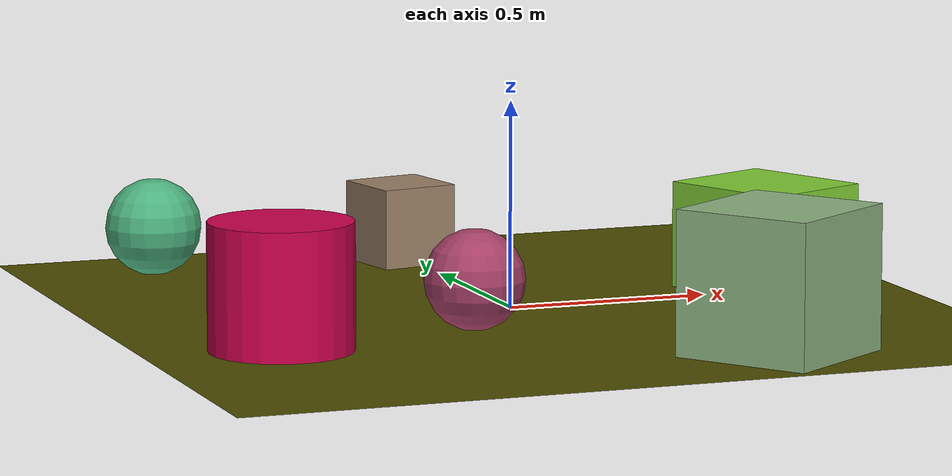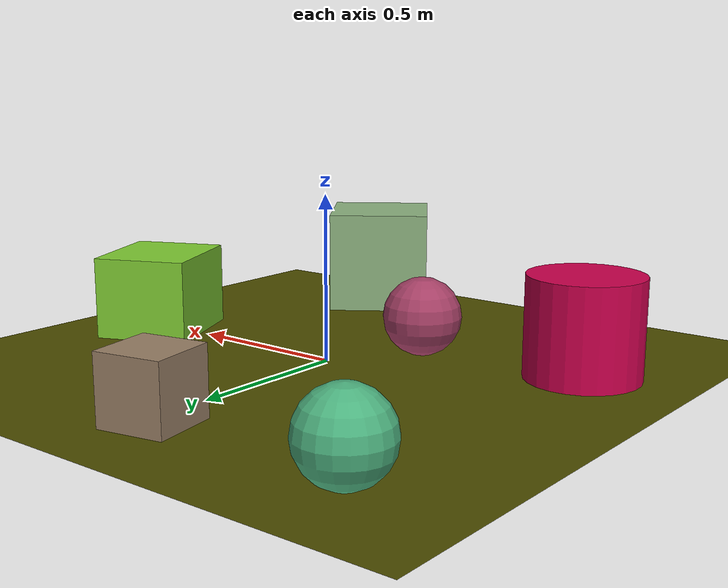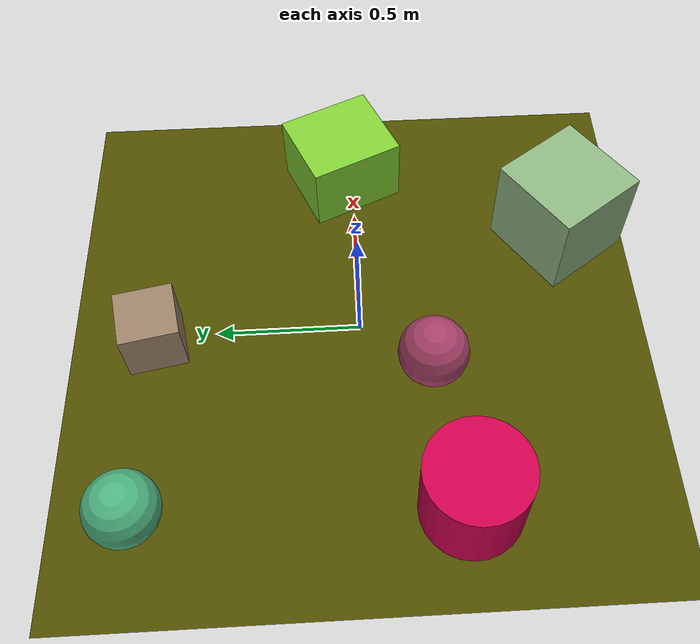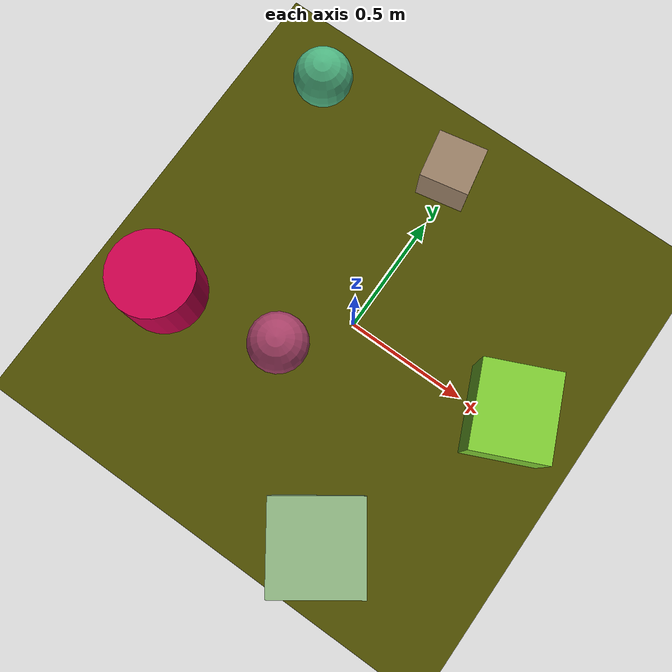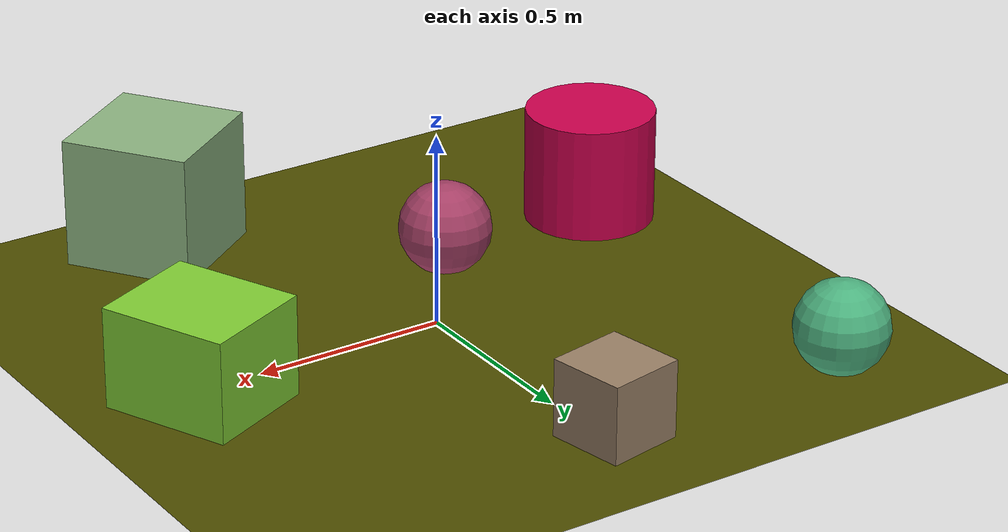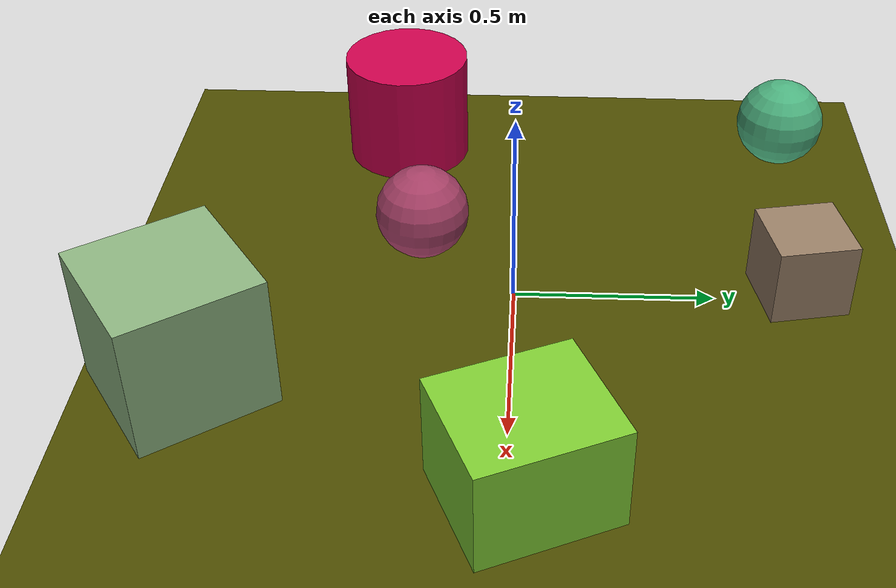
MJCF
<mujoco>
   <asset>
<texture type="skybox" builtin="gradient" rgb1="0.0 0.6 0.8" rgb2="0.6 0.4 0.3" width="500" height="500"/>
<texture name="flat_0" builtin="flat" rgb1="0.8 0.0 0.3" rgb2="0.8 0.0 0.3"  width="500" height="500"/>
<texture name="gradient_1" builtin="gradient" rgb1="0.9 0.3 0.3" rgb2="0.4 0.2 0.5" width="500" height="500"/>
<texture name="flat_2" builtin="flat" rgb1="0.6 0.5 0.4" rgb2="0.6 0.5 0.4"  width="500" height="500"/>
<texture name="flat_3" builtin="flat" rgb1="0.3 0.7 0.5" rgb2="0.3 0.7 0.5"  width="500" height="500"/>
<texture name="flat_4" builtin="flat" rgb1="0.5 0.8 0.2" rgb2="0.5 0.8 0.2"  width="500" height="500"/>
<texture name="gradient_5" builtin="gradient" rgb1="0.4 0.6 0.9" rgb2="0.7 0.8 0.1" width="500" height="500"/><material name="flat_0_mat" reflectance="0.18003035353565255" texture="flat_0" texuniform="true"/>
<material name="gradient_1_mat" reflectance="0.3249253627901627" texture="gradient_1" texuniform="true"/>
<material name="flat_2_mat" reflectance="0.6677304280064391" texture="flat_2" texuniform="true"/>
<material name="flat_3_mat" reflectance="0.5976112540308691" texture="flat_3" texuniform="true"/>
<material name="flat_4_mat" reflectance="0.9846388639775103" texture="flat_4" texuniform="true"/>
<material name="gradient_5_mat" reflectance="0.55721890707888" texture="gradient_5" texuniform="true"/>
   </asset>

   <worldbody>
     <geom type="plane" size="1 1 0.1" rgba="0.3 0.3 0.0 1" />
<light pos="-0.3055804639992714 -0.04983664648078712 2" dir="0 0 -1" cutoff="90" diffuse="1 1 1" specular="1 1 1"/>
<geom type="cylinder" pos="-0.68 -0.32 0.15" size="0.17 0.15 0.15" material="flat_0_mat" euler="0 0 56" />
<geom type="sphere" pos="-0.18 -0.24 0.12" size="0.12 0.12 0.12" material="gradient_1_mat" euler="0 0 49" />
<geom type="box" pos="-0.03 0.71 0.1" size="0.1 0.1 0.1" material="flat_2_mat" euler="0 0 11" />
<geom type="sphere" pos="-0.67 0.74 0.12" size="0.12 0.12 0.12" material="flat_3_mat" euler="0 0 81" />
<geom type="box" pos="0.68 0.04 0.13" size="0.15 0.17 0.13" material="flat_4_mat" euler="0 0 24" />
<geom type="box" pos="0.37 -0.75 0.17" size="0.17 0.17 0.17" material="gradient_5_mat" euler="0 0 35" /><camera euler="60 0 180" fovy="60" name="camera1" pos="-0.2 -1.5 1"></camera>   </worldbody>
   <visual>
      <headlight diffuse="0.7 0.7 0.7"/>
   </visual>
</mujoco>
